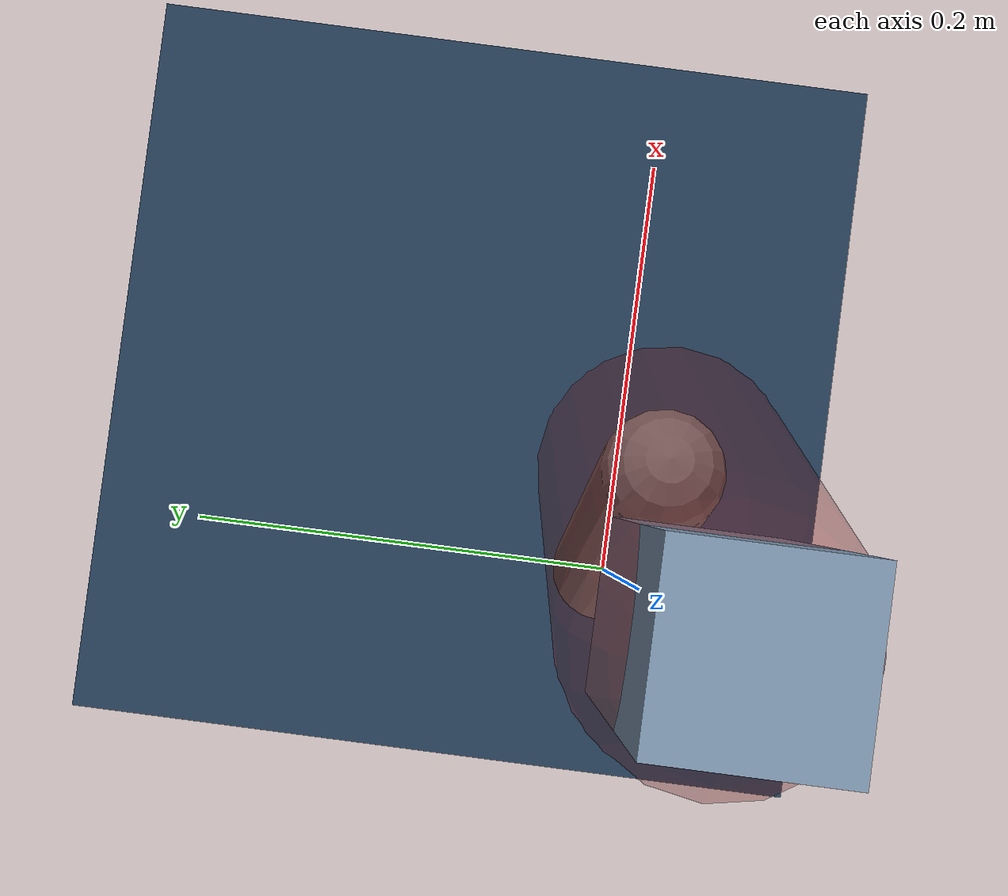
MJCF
<mujoco model="Hopper2D">
	<compiler inertiafromgeom="true" angle="radian" />
	<option timestep="0.001" integrator="implicit" cone="elliptic" solver="Newton" tolerance="1e-10" />

	<default>
		<geom contype="1" conaffinity="1" condim="3" friction="2 0.005 0.0001" solref="0.005 1" />
		<joint limited="true" damping="0.1" />
	</default>

	<asset>
		<texture name="skybox" type="skybox" builtin="gradient" rgb1=".4 .6 .8" rgb2="0 0 0" width="800" height="800" />
		<texture name="grid" type="2d" builtin="checker" rgb1=".1 .2 .3" rgb2=".2 .3 .4" width="300" height="300" mark="edge" markrgb=".2 .3 .4" />
		<material name="ground" texture="grid" texrepeat="1 1" texuniform="true" reflectance="0.1" />
		<material name="leg" rgba="0.5 0.6 0.7 1" />
	</asset>

	<worldbody>

		<geom name="floor" type="plane" size="5 5 0.25" material="ground" />

		<light directional="false" diffuse="0.8 0.8 0.8" specular="0.3 0.3 0.3" pos="0 0 2" dir="0 0 -1" />
		<light mode="targetbodycom" target="base" directional="false" diffuse="0.8 0.8 0.8" specular="0.3 0.3 0.3" pos="0 0 2" dir="0 0 -1" />

		<camera name="fixed" pos="0 -2 1" xyaxes="1 0 0 0 0 1" />
		<camera name="tracking" mode="trackcom" pos="0 -3 1" />

		<body name="root" pos="0 0 0.4741857713763363">
			<joint name="slide_x" type="slide" axis="1 0 0" range="-100 100" />
			<joint name="slide_z" type="slide" axis="0 0 1" range="0 10" />

			<body name="base" pos="0 0 0">
				<geom name="torso" type="box" size="0.03 0.03 0.1" mass="5.249" material="leg" />

				<body name="link1" pos="0 0 0" euler="0 1.3645348759623488 0">
					<joint type="hinge" axis="0 -1 0" pos="0 0 0" name="hinge1" limited="true" range="-3.14 3.14" stiffness="0" damping="0.1" />
					<geom name="thigh" type="capsule" fromto="0 0 0 0.23898206309028897 0 0" size="0.05" rgba="0.5 0 0 0.3" mass="0.8279551577257224" />

					<body name="link2" pos="0.23898206309028897 0 0" euler="0 0.40721677006508883 0">
						<joint type="hinge" axis="0 -1 0" pos="0 0 0" name="hinge2" limited="true" range="-3.14 3.14" stiffness="0" damping="0.1" />
						<geom name="shank" type="capsule" fromto="0 0 0 0.24520370828604732 0 0" size="0.025" mass="0.43856296662883787" />

					</body>
				</body>
			</body>
		</body>
	</worldbody>

	<actuator>
		<motor name="torque1" joint="hinge1" ctrlrange="-338.3649162056815 338.3649162056815" ctrllimited="true" gear="1" />
		<motor name="torque2" joint="hinge2" ctrlrange="-58.63705450446218 58.63705450446218" ctrllimited="true" gear="1" />
	</actuator>
</mujoco>
